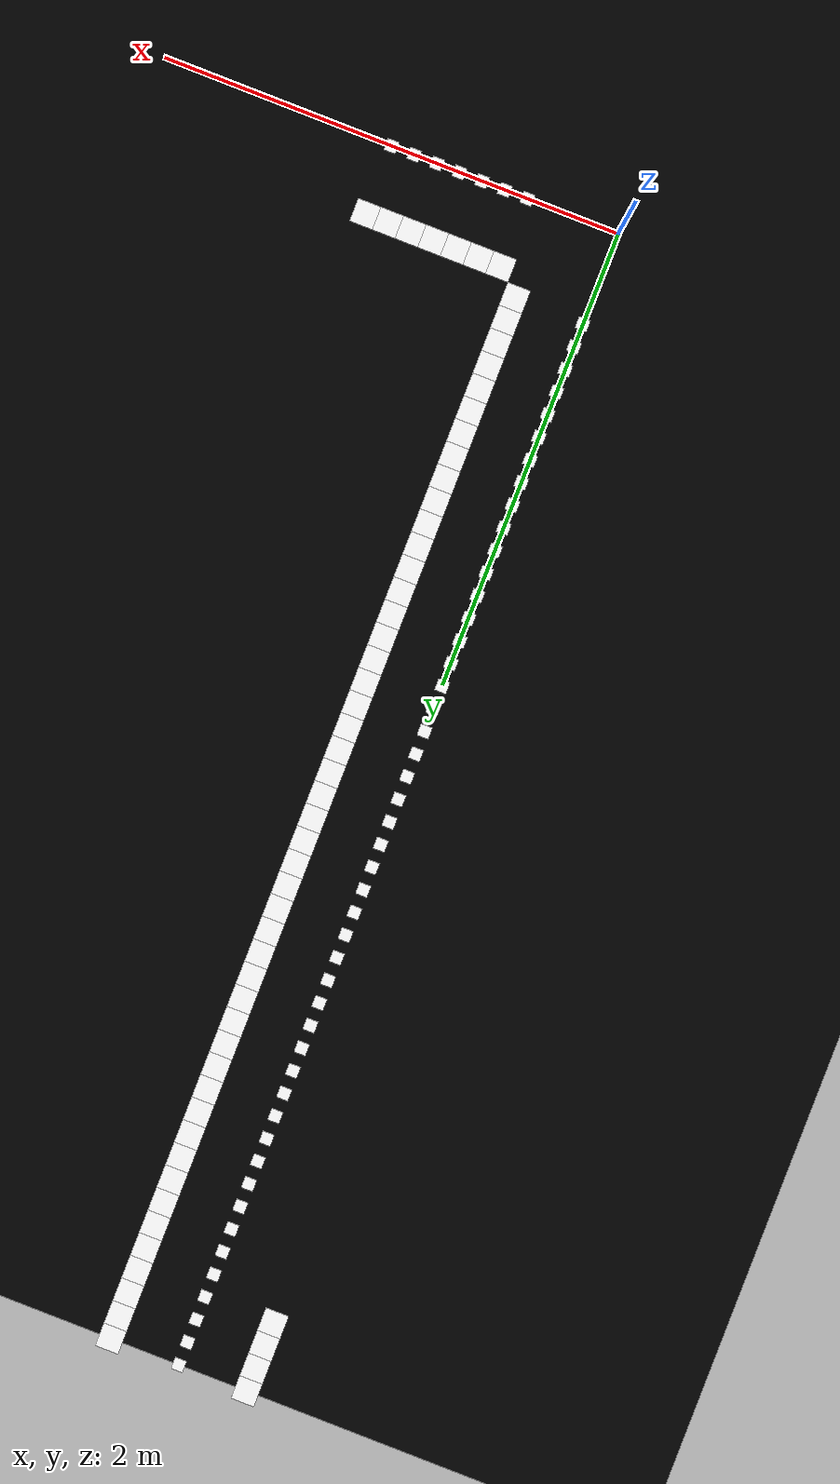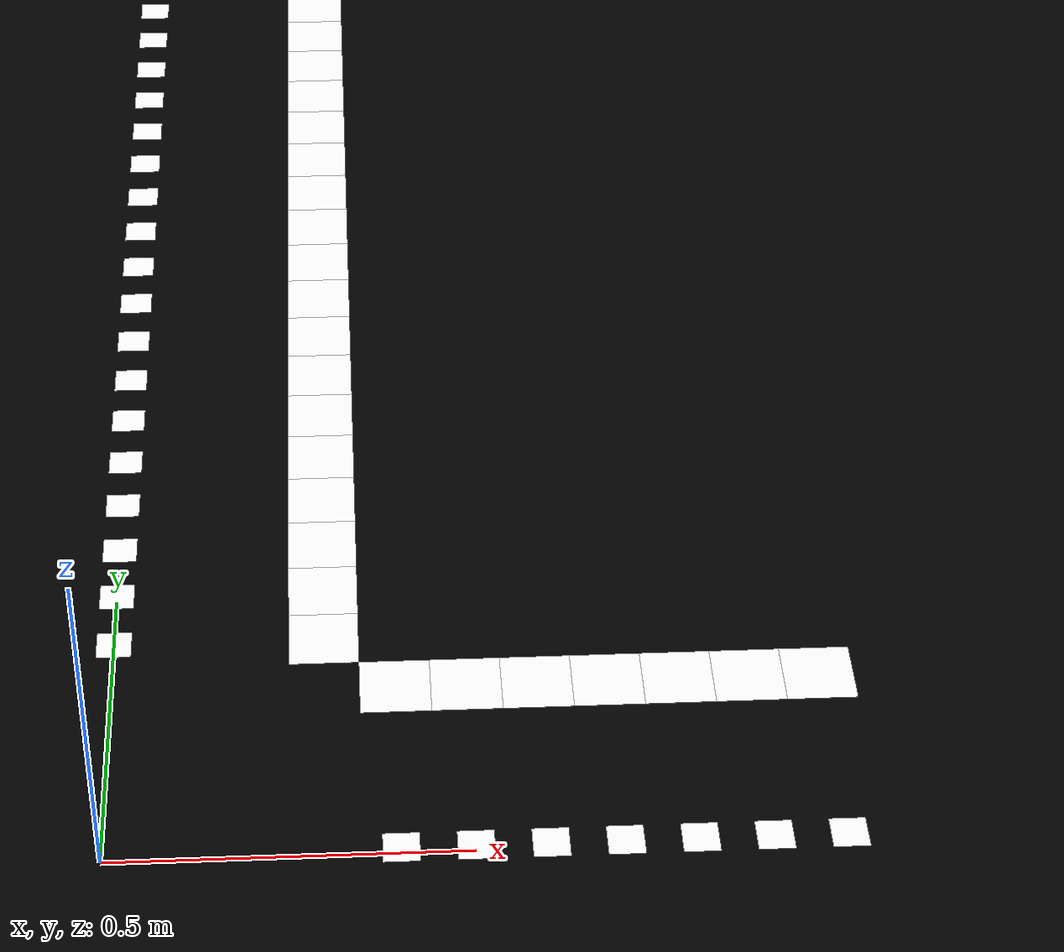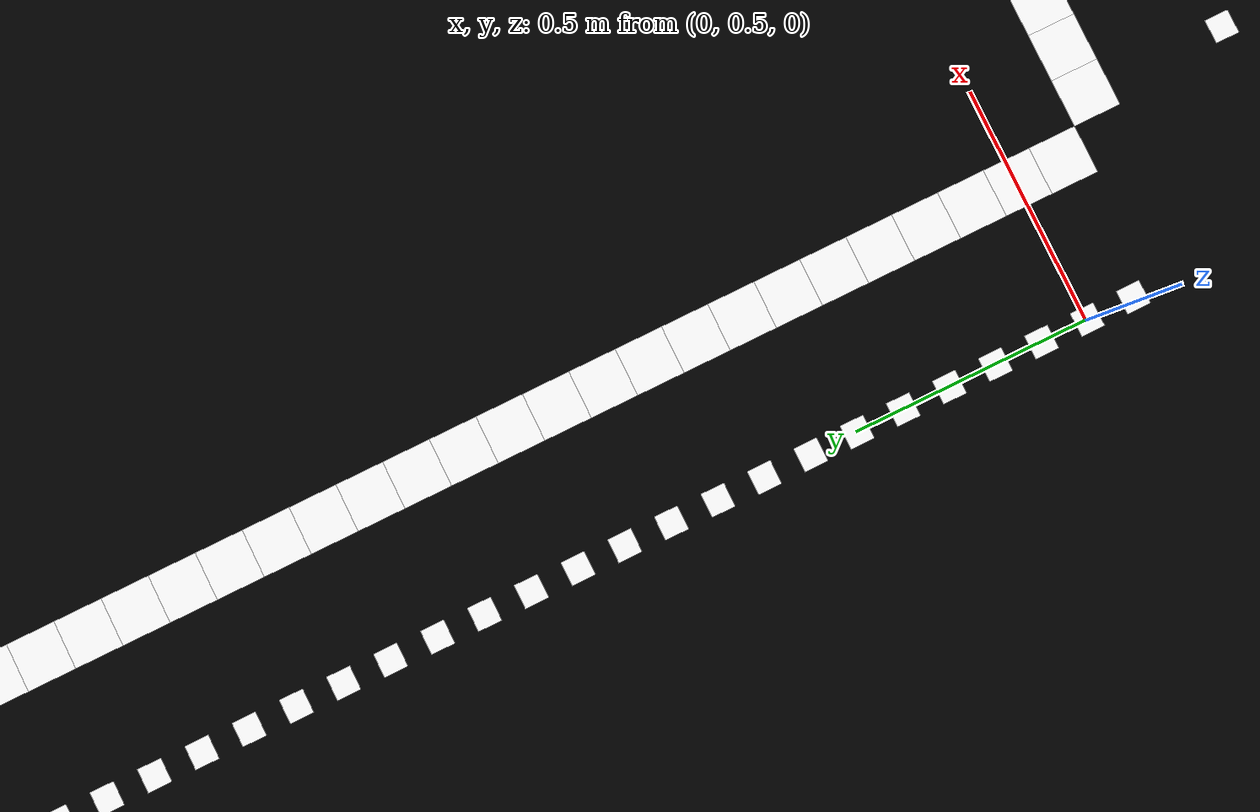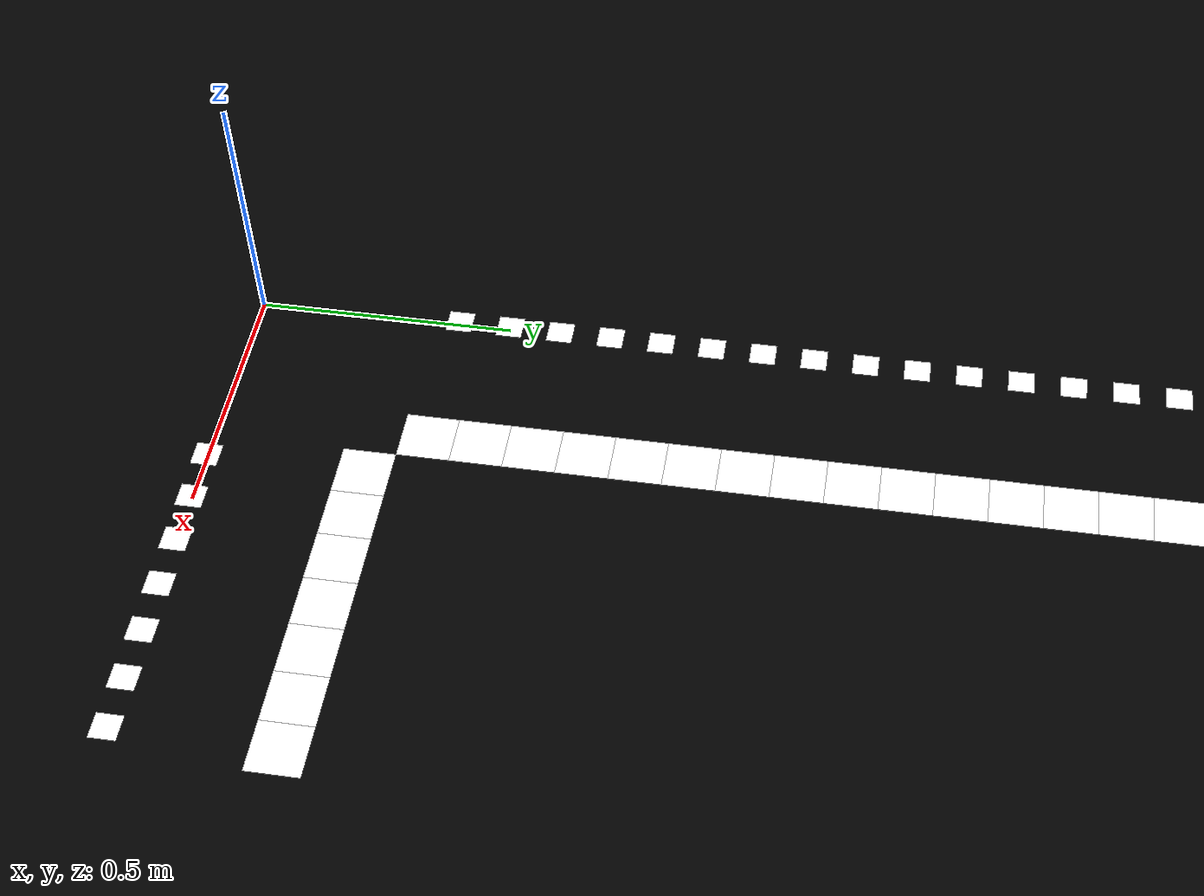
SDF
<sdf version="1.5">
 <model name="AutoNOMOS_mini_intersection">
  <static>true</static>
  <link name="field">
   <pose>0 0 0.01 0 0 0</pose>
   <collision name="collision">
    <geometry><plane><normal>0 0 1</normal><size>10 10</size></plane></geometry>
    <surface><friction><ode><mu>100</mu><mu2>50</mu2></ode></friction></surface>
   </collision>
   <visual name="carpet">
    <cast_shadows>false</cast_shadows>
    <geometry><plane><normal>0 0 1</normal><size>10 10</size></plane></geometry>
    <material>
     <ambient>0 0 0 0</ambient>
     <diffuse>0 0 0 1</diffuse>
     <specular>0 0 0 0</specular>
     <emissive>0 0 0 0</emissive>
    </material>
   </visual>
  </link>
  <link name="L1_p4">
   <pose>0.4 0 .011 0 0 0</pose>
   <visual name="visual_L1_p4">
    <cast_shadows>false</cast_shadows>
    <geometry><plane><normal>0 0 1</normal><size>.05 .05</size></plane></geometry>
    <material>
     <ambient>0 0 0 0</ambient>
     <diffuse>1 1 1 0</diffuse>
     <specular>0 0 0 0</specular>
     <emissive>0 0 0 0</emissive>
    </material>
   </visual>
  </link>
  <link name="L2_p4">
   <pose>0.4 0.3 .011 0 0 0</pose>
   <visual name="visual_L2_p4">
    <cast_shadows>false</cast_shadows>
    <geometry><plane><normal>0 0 1</normal><size>.1 .1</size></plane></geometry>
    <material>
     <ambient>0 0 0 0</ambient>
     <diffuse>1 1 1 0</diffuse>
     <specular>0 0 0 0</specular>
     <emissive>0 0 0 0</emissive>
    </material>
   </visual>
  </link>
  <link name="L3_p4">
   <pose>0.3 0.4 .011 0 0 0</pose>
   <visual name="visual_L3_p4">
    <cast_shadows>false</cast_shadows>
    <geometry><plane><normal>0 0 1</normal><size>.1 .1</size></plane></geometry>
    <material>
     <ambient>0 0 0 0</ambient>
     <diffuse>1 1 1 0</diffuse>
     <specular>0 0 0 0</specular>
     <emissive>0 0 0 0</emissive>
    </material>
   </visual>
  </link>
  <link name="L4_p4">
   <pose>0 0.4 .011 0 0 0</pose>
   <visual name="visual_L4_p4">
    <cast_shadows>false</cast_shadows>
    <geometry><plane><normal>0 0 1</normal><size>.05 .05</size></plane></geometry>
    <material>
     <ambient>0 0 0 0</ambient>
     <diffuse>1 1 1 0</diffuse>
     <specular>0 0 0 0</specular>
     <emissive>0 0 0 0</emissive>
    </material>
   </visual>
  </link>
  <link name="L1_p5">
   <pose>0.5 0 .011 0 0 0</pose>
   <visual name="visual_L1_p5">
    <cast_shadows>false</cast_shadows>
    <geometry><plane><normal>0 0 1</normal><size>.05 .05</size></plane></geometry>
    <material>
     <ambient>0 0 0 0</ambient>
     <diffuse>1 1 1 0</diffuse>
     <specular>0 0 0 0</specular>
     <emissive>0 0 0 0</emissive>
    </material>
   </visual>
  </link>
  <link name="L2_p5">
   <pose>0.5 0.3 .011 0 0 0</pose>
   <visual name="visual_L2_p5">
    <cast_shadows>false</cast_shadows>
    <geometry><plane><normal>0 0 1</normal><size>.1 .1</size></plane></geometry>
    <material>
     <ambient>0 0 0 0</ambient>
     <diffuse>1 1 1 0</diffuse>
     <specular>0 0 0 0</specular>
     <emissive>0 0 0 0</emissive>
    </material>
   </visual>
  </link>
  <link name="L3_p5">
   <pose>0.3 0.5 .011 0 0 0</pose>
   <visual name="visual_L3_p5">
    <cast_shadows>false</cast_shadows>
    <geometry><plane><normal>0 0 1</normal><size>.1 .1</size></plane></geometry>
    <material>
     <ambient>0 0 0 0</ambient>
     <diffuse>1 1 1 0</diffuse>
     <specular>0 0 0 0</specular>
     <emissive>0 0 0 0</emissive>
    </material>
   </visual>
  </link>
  <link name="L4_p5">
   <pose>0 0.5 .011 0 0 0</pose>
   <visual name="visual_L4_p5">
    <cast_shadows>false</cast_shadows>
    <geometry><plane><normal>0 0 1</normal><size>.05 .05</size></plane></geometry>
    <material>
     <ambient>0 0 0 0</ambient>
     <diffuse>1 1 1 0</diffuse>
     <specular>0 0 0 0</specular>
     <emissive>0 0 0 0</emissive>
    </material>
   </visual>
  </link>
  <link name="L1_p6">
   <pose>0.6 0 .011 0 0 0</pose>
   <visual name="visual_L1_p6">
    <cast_shadows>false</cast_shadows>
    <geometry><plane><normal>0 0 1</normal><size>.05 .05</size></plane></geometry>
    <material>
     <ambient>0 0 0 0</ambient>
     <diffuse>1 1 1 0</diffuse>
     <specular>0 0 0 0</specular>
     <emissive>0 0 0 0</emissive>
    </material>
   </visual>
  </link>
  <link name="L2_p6">
   <pose>0.6 0.3 .011 0 0 0</pose>
   <visual name="visual_L2_p6">
    <cast_shadows>false</cast_shadows>
    <geometry><plane><normal>0 0 1</normal><size>.1 .1</size></plane></geometry>
    <material>
     <ambient>0 0 0 0</ambient>
     <diffuse>1 1 1 0</diffuse>
     <specular>0 0 0 0</specular>
     <emissive>0 0 0 0</emissive>
    </material>
   </visual>
  </link>
  <link name="L3_p6">
   <pose>0.3 0.6 .011 0 0 0</pose>
   <visual name="visual_L3_p6">
    <cast_shadows>false</cast_shadows>
    <geometry><plane><normal>0 0 1</normal><size>.1 .1</size></plane></geometry>
    <material>
     <ambient>0 0 0 0</ambient>
     <diffuse>1 1 1 0</diffuse>
     <specular>0 0 0 0</specular>
     <emissive>0 0 0 0</emissive>
    </material>
   </visual>
  </link>
  <link name="L4_p6">
   <pose>0 0.6 .011 0 0 0</pose>
   <visual name="visual_L4_p6">
    <cast_shadows>false</cast_shadows>
    <geometry><plane><normal>0 0 1</normal><size>.05 .05</size></plane></geometry>
    <material>
     <ambient>0 0 0 0</ambient>
     <diffuse>1 1 1 0</diffuse>
     <specular>0 0 0 0</specular>
     <emissive>0 0 0 0</emissive>
    </material>
   </visual>
  </link>
  <link name="L1_p7">
   <pose>0.7 0 .011 0 0 0</pose>
   <visual name="visual_L1_p7">
    <cast_shadows>false</cast_shadows>
    <geometry><plane><normal>0 0 1</normal><size>.05 .05</size></plane></geometry>
    <material>
     <ambient>0 0 0 0</ambient>
     <diffuse>1 1 1 0</diffuse>
     <specular>0 0 0 0</specular>
     <emissive>0 0 0 0</emissive>
    </material>
   </visual>
  </link>
  <link name="L2_p7">
   <pose>0.7 0.3 .011 0 0 0</pose>
   <visual name="visual_L2_p7">
    <cast_shadows>false</cast_shadows>
    <geometry><plane><normal>0 0 1</normal><size>.1 .1</size></plane></geometry>
    <material>
     <ambient>0 0 0 0</ambient>
     <diffuse>1 1 1 0</diffuse>
     <specular>0 0 0 0</specular>
     <emissive>0 0 0 0</emissive>
    </material>
   </visual>
  </link>
  <link name="L3_p7">
   <pose>0.3 0.7 .011 0 0 0</pose>
   <visual name="visual_L3_p7">
    <cast_shadows>false</cast_shadows>
    <geometry><plane><normal>0 0 1</normal><size>.1 .1</size></plane></geometry>
    <material>
     <ambient>0 0 0 0</ambient>
     <diffuse>1 1 1 0</diffuse>
     <specular>0 0 0 0</specular>
     <emissive>0 0 0 0</emissive>
    </material>
   </visual>
  </link>
  <link name="L4_p7">
   <pose>0 0.7 .011 0 0 0</pose>
   <visual name="visual_L4_p7">
    <cast_shadows>false</cast_shadows>
    <geometry><plane><normal>0 0 1</normal><size>.05 .05</size></plane></geometry>
    <material>
     <ambient>0 0 0 0</ambient>
     <diffuse>1 1 1 0</diffuse>
     <specular>0 0 0 0</specular>
     <emissive>0 0 0 0</emissive>
    </material>
   </visual>
  </link>
  <link name="L1_p8">
   <pose>0.8 0 .011 0 0 0</pose>
   <visual name="visual_L1_p8">
    <cast_shadows>false</cast_shadows>
    <geometry><plane><normal>0 0 1</normal><size>.05 .05</size></plane></geometry>
    <material>
     <ambient>0 0 0 0</ambient>
     <diffuse>1 1 1 0</diffuse>
     <specular>0 0 0 0</specular>
     <emissive>0 0 0 0</emissive>
    </material>
   </visual>
  </link>
  <link name="L2_p8">
   <pose>0.8 0.3 .011 0 0 0</pose>
   <visual name="visual_L2_p8">
    <cast_shadows>false</cast_shadows>
    <geometry><plane><normal>0 0 1</normal><size>.1 .1</size></plane></geometry>
    <material>
     <ambient>0 0 0 0</ambient>
     <diffuse>1 1 1 0</diffuse>
     <specular>0 0 0 0</specular>
     <emissive>0 0 0 0</emissive>
    </material>
   </visual>
  </link>
  <link name="L3_p8">
   <pose>0.3 0.8 .011 0 0 0</pose>
   <visual name="visual_L3_p8">
    <cast_shadows>false</cast_shadows>
    <geometry><plane><normal>0 0 1</normal><size>.1 .1</size></plane></geometry>
    <material>
     <ambient>0 0 0 0</ambient>
     <diffuse>1 1 1 0</diffuse>
     <specular>0 0 0 0</specular>
     <emissive>0 0 0 0</emissive>
    </material>
   </visual>
  </link>
  <link name="L4_p8">
   <pose>0 0.8 .011 0 0 0</pose>
   <visual name="visual_L4_p8">
    <cast_shadows>false</cast_shadows>
    <geometry><plane><normal>0 0 1</normal><size>.05 .05</size></plane></geometry>
    <material>
     <ambient>0 0 0 0</ambient>
     <diffuse>1 1 1 0</diffuse>
     <specular>0 0 0 0</specular>
     <emissive>0 0 0 0</emissive>
    </material>
   </visual>
  </link>
  <link name="L1_p9">
   <pose>0.9 0 .011 0 0 0</pose>
   <visual name="visual_L1_p9">
    <cast_shadows>false</cast_shadows>
    <geometry><plane><normal>0 0 1</normal><size>.05 .05</size></plane></geometry>
    <material>
     <ambient>0 0 0 0</ambient>
     <diffuse>1 1 1 0</diffuse>
     <specular>0 0 0 0</specular>
     <emissive>0 0 0 0</emissive>
    </material>
   </visual>
  </link>
  <link name="L2_p9">
   <pose>0.9 0.3 .011 0 0 0</pose>
   <visual name="visual_L2_p9">
    <cast_shadows>false</cast_shadows>
    <geometry><plane><normal>0 0 1</normal><size>.1 .1</size></plane></geometry>
    <material>
     <ambient>0 0 0 0</ambient>
     <diffuse>1 1 1 0</diffuse>
     <specular>0 0 0 0</specular>
     <emissive>0 0 0 0</emissive>
    </material>
   </visual>
  </link>
  <link name="L3_p9">
   <pose>0.3 0.9 .011 0 0 0</pose>
   <visual name="visual_L3_p9">
    <cast_shadows>false</cast_shadows>
    <geometry><plane><normal>0 0 1</normal><size>.1 .1</size></plane></geometry>
    <material>
     <ambient>0 0 0 0</ambient>
     <diffuse>1 1 1 0</diffuse>
     <specular>0 0 0 0</specular>
     <emissive>0 0 0 0</emissive>
    </material>
   </visual>
  </link>
  <link name="L4_p9">
   <pose>0 0.9 .011 0 0 0</pose>
   <visual name="visual_L4_p9">
    <cast_shadows>false</cast_shadows>
    <geometry><plane><normal>0 0 1</normal><size>.05 .05</size></plane></geometry>
    <material>
     <ambient>0 0 0 0</ambient>
     <diffuse>1 1 1 0</diffuse>
     <specular>0 0 0 0</specular>
     <emissive>0 0 0 0</emissive>
    </material>
   </visual>
  </link>
  <link name="L1_p10">
   <pose>1 0 .011 0 0 0</pose>
   <visual name="visual_L1_p10">
    <cast_shadows>false</cast_shadows>
    <geometry><plane><normal>0 0 1</normal><size>.05 .05</size></plane></geometry>
    <material>
     <ambient>0 0 0 0</ambient>
     <diffuse>1 1 1 0</diffuse>
     <specular>0 0 0 0</specular>
     <emissive>0 0 0 0</emissive>
    </material>
   </visual>
  </link>
  <link name="L2_p10">
   <pose>1 0.3 .011 0 0 0</pose>
   <visual name="visual_L2_p10">
    <cast_shadows>false</cast_shadows>
    <geometry><plane><normal>0 0 1</normal><size>.1 .1</size></plane></geometry>
    <material>
     <ambient>0 0 0 0</ambient>
     <diffuse>1 1 1 0</diffuse>
     <specular>0 0 0 0</specular>
     <emissive>0 0 0 0</emissive>
    </material>
   </visual>
  </link>
  <link name="L3_p10">
   <pose>0.3 1 .011 0 0 0</pose>
   <visual name="visual_L3_p10">
    <cast_shadows>false</cast_shadows>
    <geometry><plane><normal>0 0 1</normal><size>.1 .1</size></plane></geometry>
    <material>
     <ambient>0 0 0 0</ambient>
     <diffuse>1 1 1 0</diffuse>
     <specular>0 0 0 0</specular>
     <emissive>0 0 0 0</emissive>
    </material>
   </visual>
  </link>
  <link name="L4_p10">
   <pose>0 1 .011 0 0 0</pose>
   <visual name="visual_L4_p10">
    <cast_shadows>false</cast_shadows>
    <geometry><plane><normal>0 0 1</normal><size>.05 .05</size></plane></geometry>
    <material>
     <ambient>0 0 0 0</ambient>
     <diffuse>1 1 1 0</diffuse>
     <specular>0 0 0 0</specular>
     <emissive>0 0 0 0</emissive>
    </material>
   </visual>
  </link>
  <link name="L3_p11">
   <pose>0.3 1.1 .011 0 0 0</pose>
   <visual name="visual_L3_p11">
    <cast_shadows>false</cast_shadows>
    <geometry><plane><normal>0 0 1</normal><size>.1 .1</size></plane></geometry>
    <material>
     <ambient>0 0 0 0</ambient>
     <diffuse>1 1 1 0</diffuse>
     <specular>0 0 0 0</specular>
     <emissive>0 0 0 0</emissive>
    </material>
   </visual>
  </link>
  <link name="L4_p11">
   <pose>0 1.1 .011 0 0 0</pose>
   <visual name="visual_L4_p11">
    <cast_shadows>false</cast_shadows>
    <geometry><plane><normal>0 0 1</normal><size>.05 .05</size></plane></geometry>
    <material>
     <ambient>0 0 0 0</ambient>
     <diffuse>1 1 1 0</diffuse>
     <specular>0 0 0 0</specular>
     <emissive>0 0 0 0</emissive>
    </material>
   </visual>
  </link>
  <link name="L3_p12">
   <pose>0.3 1.2 .011 0 0 0</pose>
   <visual name="visual_L3_p12">
    <cast_shadows>false</cast_shadows>
    <geometry><plane><normal>0 0 1</normal><size>.1 .1</size></plane></geometry>
    <material>
     <ambient>0 0 0 0</ambient>
     <diffuse>1 1 1 0</diffuse>
     <specular>0 0 0 0</specular>
     <emissive>0 0 0 0</emissive>
    </material>
   </visual>
  </link>
  <link name="L4_p12">
   <pose>0 1.2 .011 0 0 0</pose>
   <visual name="visual_L4_p12">
    <cast_shadows>false</cast_shadows>
    <geometry><plane><normal>0 0 1</normal><size>.05 .05</size></plane></geometry>
    <material>
     <ambient>0 0 0 0</ambient>
     <diffuse>1 1 1 0</diffuse>
     <specular>0 0 0 0</specular>
     <emissive>0 0 0 0</emissive>
    </material>
   </visual>
  </link>
  <link name="L3_p13">
   <pose>0.3 1.3 .011 0 0 0</pose>
   <visual name="visual_L3_p13">
    <cast_shadows>false</cast_shadows>
    <geometry><plane><normal>0 0 1</normal><size>.1 .1</size></plane></geometry>
    <material>
     <ambient>0 0 0 0</ambient>
     <diffuse>1 1 1 0</diffuse>
     <specular>0 0 0 0</specular>
     <emissive>0 0 0 0</emissive>
    </material>
   </visual>
  </link>
  <link name="L4_p13">
   <pose>0 1.3 .011 0 0 0</pose>
   <visual name="visual_L4_p13">
    <cast_shadows>false</cast_shadows>
    <geometry><plane><normal>0 0 1</normal><size>.05 .05</size></plane></geometry>
    <material>
     <ambient>0 0 0 0</ambient>
     <diffuse>1 1 1 0</diffuse>
     <specular>0 0 0 0</specular>
     <emissive>0 0 0 0</emissive>
    </material>
   </visual>
  </link>
  <link name="L3_p14">
   <pose>0.3 1.4 .011 0 0 0</pose>
   <visual name="visual_L3_p14">
    <cast_shadows>false</cast_shadows>
    <geometry><plane><normal>0 0 1</normal><size>.1 .1</size></plane></geometry>
    <material>
     <ambient>0 0 0 0</ambient>
     <diffuse>1 1 1 0</diffuse>
     <specular>0 0 0 0</specular>
     <emissive>0 0 0 0</emissive>
    </material>
   </visual>
  </link>
  <link name="L4_p14">
   <pose>0 1.4 .011 0 0 0</pose>
   <visual name="visual_L4_p14">
    <cast_shadows>false</cast_shadows>
    <geometry><plane><normal>0 0 1</normal><size>.05 .05</size></plane></geometry>
    <material>
     <ambient>0 0 0 0</ambient>
     <diffuse>1 1 1 0</diffuse>
     <specular>0 0 0 0</specular>
     <emissive>0 0 0 0</emissive>
    </material>
   </visual>
  </link>
  <link name="L3_p15">
   <pose>0.3 1.5 .011 0 0 0</pose>
   <visual name="visual_L3_p15">
    <cast_shadows>false</cast_shadows>
    <geometry><plane><normal>0 0 1</normal><size>.1 .1</size></plane></geometry>
    <material>
     <ambient>0 0 0 0</ambient>
     <diffuse>1 1 1 0</diffuse>
     <specular>0 0 0 0</specular>
     <emissive>0 0 0 0</emissive>
    </material>
   </visual>
  </link>
  <link name="L4_p15">
   <pose>0 1.5 .011 0 0 0</pose>
   <visual name="visual_L4_p15">
    <cast_shadows>false</cast_shadows>
    <geometry><plane><normal>0 0 1</normal><size>.05 .05</size></plane></geometry>
    <material>
     <ambient>0 0 0 0</ambient>
     <diffuse>1 1 1 0</diffuse>
     <specular>0 0 0 0</specular>
     <emissive>0 0 0 0</emissive>
    </material>
   </visual>
  </link>
  <link name="L3_p16">
   <pose>0.3 1.6 .011 0 0 0</pose>
   <visual name="visual_L3_p16">
    <cast_shadows>false</cast_shadows>
    <geometry><plane><normal>0 0 1</normal><size>.1 .1</size></plane></geometry>
    <material>
     <ambient>0 0 0 0</ambient>
     <diffuse>1 1 1 0</diffuse>
     <specular>0 0 0 0</specular>
     <emissive>0 0 0 0</emissive>
    </material>
   </visual>
  </link>
  <link name="L4_p16">
   <pose>0 1.6 .011 0 0 0</pose>
   <visual name="visual_L4_p16">
    <cast_shadows>false</cast_shadows>
    <geometry><plane><normal>0 0 1</normal><size>.05 .05</size></plane></geometry>
    <material>
     <ambient>0 0 0 0</ambient>
     <diffuse>1 1 1 0</diffuse>
     <specular>0 0 0 0</specular>
     <emissive>0 0 0 0</emissive>
    </material>
   </visual>
  </link>
  <link name="L3_p17">
   <pose>0.3 1.7 .011 0 0 0</pose>
   <visual name="visual_L3_p17">
    <cast_shadows>false</cast_shadows>
    <geometry><plane><normal>0 0 1</normal><size>.1 .1</size></plane></geometry>
    <material>
     <ambient>0 0 0 0</ambient>
     <diffuse>1 1 1 0</diffuse>
     <specular>0 0 0 0</specular>
     <emissive>0 0 0 0</emissive>
    </material>
   </visual>
  </link>
  <link name="L4_p17">
   <pose>0 1.7 .011 0 0 0</pose>
   <visual name="visual_L4_p17">
    <cast_shadows>false</cast_shadows>
    <geometry><plane><normal>0 0 1</normal><size>.05 .05</size></plane></geometry>
    <material>
     <ambient>0 0 0 0</ambient>
     <diffuse>1 1 1 0</diffuse>
     <specular>0 0 0 0</specular>
     <emissive>0 0 0 0</emissive>
    </material>
   </visual>
  </link>
  <link name="L3_p18">
   <pose>0.3 1.8 .011 0 0 0</pose>
   <visual name="visual_L3_p18">
    <cast_shadows>false</cast_shadows>
    <geometry><plane><normal>0 0 1</normal><size>.1 .1</size></plane></geometry>
    <material>
     <ambient>0 0 0 0</ambient>
     <diffuse>1 1 1 0</diffuse>
     <specular>0 0 0 0</specular>
     <emissive>0 0 0 0</emissive>
    </material>
   </visual>
  </link>
  <link name="L4_p18">
   <pose>0 1.8 .011 0 0 0</pose>
   <visual name="visual_L4_p18">
    <cast_shadows>false</cast_shadows>
    <geometry><plane><normal>0 0 1</normal><size>.05 .05</size></plane></geometry>
    <material>
     <ambient>0 0 0 0</ambient>
     <diffuse>1 1 1 0</diffuse>
     <specular>0 0 0 0</specular>
     <emissive>0 0 0 0</emissive>
    </material>
   </visual>
  </link>
  <link name="L3_p19">
   <pose>0.3 1.9 .011 0 0 0</pose>
   <visual name="visual_L3_p19">
    <cast_shadows>false</cast_shadows>
    <geometry><plane><normal>0 0 1</normal><size>.1 .1</size></plane></geometry>
    <material>
     <ambient>0 0 0 0</ambient>
     <diffuse>1 1 1 0</diffuse>
     <specular>0 0 0 0</specular>
     <emissive>0 0 0 0</emissive>
    </material>
   </visual>
  </link>
  <link name="L4_p19">
   <pose>0 1.9 .011 0 0 0</pose>
   <visual name="visual_L4_p19">
    <cast_shadows>false</cast_shadows>
    <geometry><plane><normal>0 0 1</normal><size>.05 .05</size></plane></geometry>
    <material>
     <ambient>0 0 0 0</ambient>
     <diffuse>1 1 1 0</diffuse>
     <specular>0 0 0 0</specular>
     <emissive>0 0 0 0</emissive>
    </material>
   </visual>
  </link>
  <link name="L3_p20">
   <pose>0.3 2 .011 0 0 0</pose>
   <visual name="visual_L3_p20">
    <cast_shadows>false</cast_shadows>
    <geometry><plane><normal>0 0 1</normal><size>.1 .1</size></plane></geometry>
    <material>
     <ambient>0 0 0 0</ambient>
     <diffuse>1 1 1 0</diffuse>
     <specular>0 0 0 0</specular>
     <emissive>0 0 0 0</emissive>
    </material>
   </visual>
  </link>
  <link name="L4_p20">
   <pose>0 2 .011 0 0 0</pose>
   <visual name="visual_L4_p20">
    <cast_shadows>false</cast_shadows>
    <geometry><plane><normal>0 0 1</normal><size>.05 .05</size></plane></geometry>
    <material>
     <ambient>0 0 0 0</ambient>
     <diffuse>1 1 1 0</diffuse>
     <specular>0 0 0 0</specular>
     <emissive>0 0 0 0</emissive>
    </material>
   </visual>
  </link>
  <link name="L3_p21">
   <pose>0.3 2.1 .011 0 0 0</pose>
   <visual name="visual_L3_p21">
    <cast_shadows>false</cast_shadows>
    <geometry><plane><normal>0 0 1</normal><size>.1 .1</size></plane></geometry>
    <material>
     <ambient>0 0 0 0</ambient>
     <diffuse>1 1 1 0</diffuse>
     <specular>0 0 0 0</specular>
     <emissive>0 0 0 0</emissive>
    </material>
   </visual>
  </link>
  <link name="L4_p21">
   <pose>0 2.1 .011 0 0 0</pose>
   <visual name="visual_L4_p21">
    <cast_shadows>false</cast_shadows>
    <geometry><plane><normal>0 0 1</normal><size>.05 .05</size></plane></geometry>
    <material>
     <ambient>0 0 0 0</ambient>
     <diffuse>1 1 1 0</diffuse>
     <specular>0 0 0 0</specular>
     <emissive>0 0 0 0</emissive>
    </material>
   </visual>
  </link>
  <link name="L3_p22">
   <pose>0.3 2.2 .011 0 0 0</pose>
   <visual name="visual_L3_p22">
    <cast_shadows>false</cast_shadows>
    <geometry><plane><normal>0 0 1</normal><size>.1 .1</size></plane></geometry>
    <material>
     <ambient>0 0 0 0</ambient>
     <diffuse>1 1 1 0</diffuse>
     <specular>0 0 0 0</specular>
     <emissive>0 0 0 0</emissive>
    </material>
   </visual>
  </link>
  <link name="L4_p22">
   <pose>0 2.2 .011 0 0 0</pose>
   <visual name="visual_L4_p22">
    <cast_shadows>false</cast_shadows>
    <geometry><plane><normal>0 0 1</normal><size>.05 .05</size></plane></geometry>
    <material>
     <ambient>0 0 0 0</ambient>
     <diffuse>1 1 1 0</diffuse>
     <specular>0 0 0 0</specular>
     <emissive>0 0 0 0</emissive>
    </material>
   </visual>
  </link>
  <link name="L3_p23">
   <pose>0.3 2.3 .011 0 0 0</pose>
   <visual name="visual_L3_p23">
    <cast_shadows>false</cast_shadows>
    <geometry><plane><normal>0 0 1</normal><size>.1 .1</size></plane></geometry>
    <material>
     <ambient>0 0 0 0</ambient>
     <diffuse>1 1 1 0</diffuse>
     <specular>0 0 0 0</specular>
     <emissive>0 0 0 0</emissive>
    </material>
   </visual>
  </link>
  <link name="L4_p23">
   <pose>0 2.3 .011 0 0 0</pose>
   <visual name="visual_L4_p23">
    <cast_shadows>false</cast_shadows>
    <geometry><plane><normal>0 0 1</normal><size>.05 .05</size></plane></geometry>
    <material>
     <ambient>0 0 0 0</ambient>
     <diffuse>1 1 1 0</diffuse>
     <specular>0 0 0 0</specular>
     <emissive>0 0 0 0</emissive>
    </material>
   </visual>
  </link>
  <link name="L3_p24">
   <pose>0.3 2.4 .011 0 0 0</pose>
   <visual name="visual_L3_p24">
    <cast_shadows>false</cast_shadows>
    <geometry><plane><normal>0 0 1</normal><size>.1 .1</size></plane></geometry>
    <material>
     <ambient>0 0 0 0</ambient>
     <diffuse>1 1 1 0</diffuse>
     <specular>0 0 0 0</specular>
     <emissive>0 0 0 0</emissive>
    </material>
   </visual>
  </link>
  <link name="L4_p24">
   <pose>0 2.4 .011 0 0 0</pose>
   <visual name="visual_L4_p24">
    <cast_shadows>false</cast_shadows>
    <geometry><plane><normal>0 0 1</normal><size>.05 .05</size></plane></geometry>
    <material>
     <ambient>0 0 0 0</ambient>
     <diffuse>1 1 1 0</diffuse>
     <specular>0 0 0 0</specular>
     <emissive>0 0 0 0</emissive>
    </material>
   </visual>
  </link>
  <link name="L3_p25">
   <pose>0.3 2.5 .011 0 0 0</pose>
   <visual name="visual_L3_p25">
    <cast_shadows>false</cast_shadows>
    <geometry><plane><normal>0 0 1</normal><size>.1 .1</size></plane></geometry>
    <material>
     <ambient>0 0 0 0</ambient>
     <diffuse>1 1 1 0</diffuse>
     <specular>0 0 0 0</specular>
     <emissive>0 0 0 0</emissive>
    </material>
   </visual>
  </link>
  <link name="L4_p25">
   <pose>0 2.5 .011 0 0 0</pose>
   <visual name="visual_L4_p25">
    <cast_shadows>false</cast_shadows>
    <geometry><plane><normal>0 0 1</normal><size>.05 .05</size></plane></geometry>
    <material>
     <ambient>0 0 0 0</ambient>
     <diffuse>1 1 1 0</diffuse>
     <specular>0 0 0 0</specular>
     <emissive>0 0 0 0</emissive>
    </material>
   </visual>
  </link>
  <link name="L3_p26">
   <pose>0.3 2.6 .011 0 0 0</pose>
   <visual name="visual_L3_p26">
    <cast_shadows>false</cast_shadows>
    <geometry><plane><normal>0 0 1</normal><size>.1 .1</size></plane></geometry>
    <material>
     <ambient>0 0 0 0</ambient>
     <diffuse>1 1 1 0</diffuse>
     <specular>0 0 0 0</specular>
     <emissive>0 0 0 0</emissive>
    </material>
   </visual>
  </link>
  <link name="L4_p26">
   <pose>0 2.6 .011 0 0 0</pose>
   <visual name="visual_L4_p26">
    <cast_shadows>false</cast_shadows>
    <geometry><plane><normal>0 0 1</normal><size>.05 .05</size></plane></geometry>
    <material>
     <ambient>0 0 0 0</ambient>
     <diffuse>1 1 1 0</diffuse>
     <specular>0 0 0 0</specular>
     <emissive>0 0 0 0</emissive>
    </material>
   </visual>
  </link>
  <link name="L3_p27">
   <pose>0.3 2.7 .011 0 0 0</pose>
   <visual name="visual_L3_p27">
    <cast_shadows>false</cast_shadows>
    <geometry><plane><normal>0 0 1</normal><size>.1 .1</size></plane></geometry>
    <material>
     <ambient>0 0 0 0</ambient>
     <diffuse>1 1 1 0</diffuse>
     <specular>0 0 0 0</specular>
     <emissive>0 0 0 0</emissive>
    </material>
   </visual>
  </link>
  <link name="L4_p27">
   <pose>0 2.7 .011 0 0 0</pose>
   <visual name="visual_L4_p27">
    <cast_shadows>false</cast_shadows>
    <geometry><plane><normal>0 0 1</normal><size>.05 .05</size></plane></geometry>
    <material>
     <ambient>0 0 0 0</ambient>
     <diffuse>1 1 1 0</diffuse>
     <specular>0 0 0 0</specular>
     <emissive>0 0 0 0</emissive>
    </material>
   </visual>
  </link>
  <link name="L3_p28">
   <pose>0.3 2.8 .011 0 0 0</pose>
   <visual name="visual_L3_p28">
    <cast_shadows>false</cast_shadows>
    <geometry><plane><normal>0 0 1</normal><size>.1 .1</size></plane></geometry>
    <material>
     <ambient>0 0 0 0</ambient>
     <diffuse>1 1 1 0</diffuse>
     <specular>0 0 0 0</specular>
     <emissive>0 0 0 0</emissive>
    </material>
   </visual>
  </link>
  <link name="L4_p28">
   <pose>0 2.8 .011 0 0 0</pose>
   <visual name="visual_L4_p28">
    <cast_shadows>false</cast_shadows>
    <geometry><plane><normal>0 0 1</normal><size>.05 .05</size></plane></geometry>
    <material>
     <ambient>0 0 0 0</ambient>
     <diffuse>1 1 1 0</diffuse>
     <specular>0 0 0 0</specular>
     <emissive>0 0 0 0</emissive>
    </material>
   </visual>
  </link>
  <link name="L3_p29">
   <pose>0.3 2.9 .011 0 0 0</pose>
   <visual name="visual_L3_p29">
    <cast_shadows>false</cast_shadows>
    <geometry><plane><normal>0 0 1</normal><size>.1 .1</size></plane></geometry>
    <material>
     <ambient>0 0 0 0</ambient>
     <diffuse>1 1 1 0</diffuse>
     <specular>0 0 0 0</specular>
     <emissive>0 0 0 0</emissive>
    </material>
   </visual>
  </link>
  <link name="L4_p29">
   <pose>0 2.9 .011 0 0 0</pose>
   <visual name="visual_L4_p29">
    <cast_shadows>false</cast_shadows>
    <geometry><plane><normal>0 0 1</normal><size>.05 .05</size></plane></geometry>
    <material>
     <ambient>0 0 0 0</ambient>
     <diffuse>1 1 1 0</diffuse>
     <specular>0 0 0 0</specular>
     <emissive>0 0 0 0</emissive>
    </material>
   </visual>
  </link>
  <link name="L3_p30">
   <pose>0.3 3 .011 0 0 0</pose>
   <visual name="visual_L3_p30">
    <cast_shadows>false</cast_shadows>
    <geometry><plane><normal>0 0 1</normal><size>.1 .1</size></plane></geometry>
    <material>
     <ambient>0 0 0 0</ambient>
     <diffuse>1 1 1 0</diffuse>
     <specular>0 0 0 0</specular>
     <emissive>0 0 0 0</emissive>
    </material>
   </visual>
  </link>
  <link name="L4_p30">
   <pose>0 3 .011 0 0 0</pose>
   <visual name="visual_L4_p30">
    <cast_shadows>false</cast_shadows>
    <geometry><plane><normal>0 0 1</normal><size>.05 .05</size></plane></geometry>
    <material>
     <ambient>0 0 0 0</ambient>
     <diffuse>1 1 1 0</diffuse>
     <specular>0 0 0 0</specular>
     <emissive>0 0 0 0</emissive>
    </material>
   </visual>
  </link>
  <link name="L3_p31">
   <pose>0.3 3.1 .011 0 0 0</pose>
   <visual name="visual_L3_p31">
    <cast_shadows>false</cast_shadows>
    <geometry><plane><normal>0 0 1</normal><size>.1 .1</size></plane></geometry>
    <material>
     <ambient>0 0 0 0</ambient>
     <diffuse>1 1 1 0</diffuse>
     <specular>0 0 0 0</specular>
     <emissive>0 0 0 0</emissive>
    </material>
   </visual>
  </link>
  <link name="L4_p31">
   <pose>0 3.1 .011 0 0 0</pose>
   <visual name="visual_L4_p31">
    <cast_shadows>false</cast_shadows>
    <geometry><plane><normal>0 0 1</normal><size>.05 .05</size></plane></geometry>
    <material>
     <ambient>0 0 0 0</ambient>
     <diffuse>1 1 1 0</diffuse>
     <specular>0 0 0 0</specular>
     <emissive>0 0 0 0</emissive>
    </material>
   </visual>
  </link>
  <link name="L3_p32">
   <pose>0.3 3.2 .011 0 0 0</pose>
   <visual name="visual_L3_p32">
    <cast_shadows>false</cast_shadows>
    <geometry><plane><normal>0 0 1</normal><size>.1 .1</size></plane></geometry>
    <material>
     <ambient>0 0 0 0</ambient>
     <diffuse>1 1 1 0</diffuse>
     <specular>0 0 0 0</specular>
     <emissive>0 0 0 0</emissive>
    </material>
   </visual>
  </link>
  <link name="L4_p32">
   <pose>0 3.2 .011 0 0 0</pose>
   <visual name="visual_L4_p32">
    <cast_shadows>false</cast_shadows>
    <geometry><plane><normal>0 0 1</normal><size>.05 .05</size></plane></geometry>
    <material>
     <ambient>0 0 0 0</ambient>
     <diffuse>1 1 1 0</diffuse>
     <specular>0 0 0 0</specular>
     <emissive>0 0 0 0</emissive>
    </material>
   </visual>
  </link>
  <link name="L3_p33">
   <pose>0.3 3.3 .011 0 0 0</pose>
   <visual name="visual_L3_p33">
    <cast_shadows>false</cast_shadows>
    <geometry><plane><normal>0 0 1</normal><size>.1 .1</size></plane></geometry>
    <material>
     <ambient>0 0 0 0</ambient>
     <diffuse>1 1 1 0</diffuse>
     <specular>0 0 0 0</specular>
     <emissive>0 0 0 0</emissive>
    </material>
   </visual>
  </link>
  <link name="L4_p33">
   <pose>0 3.3 .011 0 0 0</pose>
   <visual name="visual_L4_p33">
    <cast_shadows>false</cast_shadows>
    <geometry><plane><normal>0 0 1</normal><size>.05 .05</size></plane></geometry>
    <material>
     <ambient>0 0 0 0</ambient>
     <diffuse>1 1 1 0</diffuse>
     <specular>0 0 0 0</specular>
     <emissive>0 0 0 0</emissive>
    </material>
   </visual>
  </link>
  <link name="L3_p34">
   <pose>0.3 3.4 .011 0 0 0</pose>
   <visual name="visual_L3_p34">
    <cast_shadows>false</cast_shadows>
    <geometry><plane><normal>0 0 1</normal><size>.1 .1</size></plane></geometry>
    <material>
     <ambient>0 0 0 0</ambient>
     <diffuse>1 1 1 0</diffuse>
     <specular>0 0 0 0</specular>
     <emissive>0 0 0 0</emissive>
    </material>
   </visual>
  </link>
  <link name="L4_p34">
   <pose>0 3.4 .011 0 0 0</pose>
   <visual name="visual_L4_p34">
    <cast_shadows>false</cast_shadows>
    <geometry><plane><normal>0 0 1</normal><size>.05 .05</size></plane></geometry>
    <material>
     <ambient>0 0 0 0</ambient>
     <diffuse>1 1 1 0</diffuse>
     <specular>0 0 0 0</specular>
     <emissive>0 0 0 0</emissive>
    </material>
   </visual>
  </link>
  <link name="L3_p35">
   <pose>0.3 3.5 .011 0 0 0</pose>
   <visual name="visual_L3_p35">
    <cast_shadows>false</cast_shadows>
    <geometry><plane><normal>0 0 1</normal><size>.1 .1</size></plane></geometry>
    <material>
     <ambient>0 0 0 0</ambient>
     <diffuse>1 1 1 0</diffuse>
     <specular>0 0 0 0</specular>
     <emissive>0 0 0 0</emissive>
    </material>
   </visual>
  </link>
  <link name="L4_p35">
   <pose>0 3.5 .011 0 0 0</pose>
   <visual name="visual_L4_p35">
    <cast_shadows>false</cast_shadows>
    <geometry><plane><normal>0 0 1</normal><size>.05 .05</size></plane></geometry>
    <material>
     <ambient>0 0 0 0</ambient>
     <diffuse>1 1 1 0</diffuse>
     <specular>0 0 0 0</specular>
     <emissive>0 0 0 0</emissive>
    </material>
   </visual>
  </link>
  <link name="L3_p36">
   <pose>0.3 3.6 .011 0 0 0</pose>
   <visual name="visual_L3_p36">
    <cast_shadows>false</cast_shadows>
    <geometry><plane><normal>0 0 1</normal><size>.1 .1</size></plane></geometry>
    <material>
     <ambient>0 0 0 0</ambient>
     <diffuse>1 1 1 0</diffuse>
     <specular>0 0 0 0</specular>
     <emissive>0 0 0 0</emissive>
    </material>
   </visual>
  </link>
  <link name="L4_p36">
   <pose>0 3.6 .011 0 0 0</pose>
   <visual name="visual_L4_p36">
    <cast_shadows>false</cast_shadows>
    <geometry><plane><normal>0 0 1</normal><size>.05 .05</size></plane></geometry>
    <material>
     <ambient>0 0 0 0</ambient>
     <diffuse>1 1 1 0</diffuse>
     <specular>0 0 0 0</specular>
     <emissive>0 0 0 0</emissive>
    </material>
   </visual>
  </link>
  <link name="L3_p37">
   <pose>0.3 3.7 .011 0 0 0</pose>
   <visual name="visual_L3_p37">
    <cast_shadows>false</cast_shadows>
    <geometry><plane><normal>0 0 1</normal><size>.1 .1</size></plane></geometry>
    <material>
     <ambient>0 0 0 0</ambient>
     <diffuse>1 1 1 0</diffuse>
     <specular>0 0 0 0</specular>
     <emissive>0 0 0 0</emissive>
    </material>
   </visual>
  </link>
  <link name="L4_p37">
   <pose>0 3.7 .011 0 0 0</pose>
   <visual name="visual_L4_p37">
    <cast_shadows>false</cast_shadows>
    <geometry><plane><normal>0 0 1</normal><size>.05 .05</size></plane></geometry>
    <material>
     <ambient>0 0 0 0</ambient>
     <diffuse>1 1 1 0</diffuse>
     <specular>0 0 0 0</specular>
     <emissive>0 0 0 0</emissive>
    </material>
   </visual>
  </link>
  <link name="L3_p38">
   <pose>0.3 3.8 .011 0 0 0</pose>
   <visual name="visual_L3_p38">
    <cast_shadows>false</cast_shadows>
    <geometry><plane><normal>0 0 1</normal><size>.1 .1</size></plane></geometry>
    <material>
     <ambient>0 0 0 0</ambient>
     <diffuse>1 1 1 0</diffuse>
     <specular>0 0 0 0</specular>
     <emissive>0 0 0 0</emissive>
    </material>
   </visual>
  </link>
  <link name="L4_p38">
   <pose>0 3.8 .011 0 0 0</pose>
   <visual name="visual_L4_p38">
    <cast_shadows>false</cast_shadows>
    <geometry><plane><normal>0 0 1</normal><size>.05 .05</size></plane></geometry>
    <material>
     <ambient>0 0 0 0</ambient>
     <diffuse>1 1 1 0</diffuse>
     <specular>0 0 0 0</specular>
     <emissive>0 0 0 0</emissive>
    </material>
   </visual>
  </link>
  <link name="L3_p39">
   <pose>0.3 3.9 .011 0 0 0</pose>
   <visual name="visual_L3_p39">
    <cast_shadows>false</cast_shadows>
    <geometry><plane><normal>0 0 1</normal><size>.1 .1</size></plane></geometry>
    <material>
     <ambient>0 0 0 0</ambient>
     <diffuse>1 1 1 0</diffuse>
     <specular>0 0 0 0</specular>
     <emissive>0 0 0 0</emissive>
    </material>
   </visual>
  </link>
  <link name="L4_p39">
   <pose>0 3.9 .011 0 0 0</pose>
   <visual name="visual_L4_p39">
    <cast_shadows>false</cast_shadows>
    <geometry><plane><normal>0 0 1</normal><size>.05 .05</size></plane></geometry>
    <material>
     <ambient>0 0 0 0</ambient>
     <diffuse>1 1 1 0</diffuse>
     <specular>0 0 0 0</specular>
     <emissive>0 0 0 0</emissive>
    </material>
   </visual>
  </link>
  <link name="L3_p40">
   <pose>0.3 4 .011 0 0 0</pose>
   <visual name="visual_L3_p40">
    <cast_shadows>false</cast_shadows>
    <geometry><plane><normal>0 0 1</normal><size>.1 .1</size></plane></geometry>
    <material>
     <ambient>0 0 0 0</ambient>
     <diffuse>1 1 1 0</diffuse>
     <specular>0 0 0 0</specular>
     <emissive>0 0 0 0</emissive>
    </material>
   </visual>
  </link>
  <link name="L4_p40">
   <pose>0 4 .011 0 0 0</pose>
   <visual name="visual_L4_p40">
    <cast_shadows>false</cast_shadows>
    <geometry><plane><normal>0 0 1</normal><size>.05 .05</size></plane></geometry>
    <material>
     <ambient>0 0 0 0</ambient>
     <diffuse>1 1 1 0</diffuse>
     <specular>0 0 0 0</specular>
     <emissive>0 0 0 0</emissive>
    </material>
   </visual>
  </link>
  <link name="L3_p41">
   <pose>0.3 4.1 .011 0 0 0</pose>
   <visual name="visual_L3_p41">
    <cast_shadows>false</cast_shadows>
    <geometry><plane><normal>0 0 1</normal><size>.1 .1</size></plane></geometry>
    <material>
     <ambient>0 0 0 0</ambient>
     <diffuse>1 1 1 0</diffuse>
     <specular>0 0 0 0</specular>
     <emissive>0 0 0 0</emissive>
    </material>
   </visual>
  </link>
  <link name="L4_p41">
   <pose>0 4.1 .011 0 0 0</pose>
   <visual name="visual_L4_p41">
    <cast_shadows>false</cast_shadows>
    <geometry><plane><normal>0 0 1</normal><size>.05 .05</size></plane></geometry>
    <material>
     <ambient>0 0 0 0</ambient>
     <diffuse>1 1 1 0</diffuse>
     <specular>0 0 0 0</specular>
     <emissive>0 0 0 0</emissive>
    </material>
   </visual>
  </link>
  <link name="L3_p42">
   <pose>0.3 4.2 .011 0 0 0</pose>
   <visual name="visual_L3_p42">
    <cast_shadows>false</cast_shadows>
    <geometry><plane><normal>0 0 1</normal><size>.1 .1</size></plane></geometry>
    <material>
     <ambient>0 0 0 0</ambient>
     <diffuse>1 1 1 0</diffuse>
     <specular>0 0 0 0</specular>
     <emissive>0 0 0 0</emissive>
    </material>
   </visual>
  </link>
  <link name="L4_p42">
   <pose>0 4.2 .011 0 0 0</pose>
   <visual name="visual_L4_p42">
    <cast_shadows>false</cast_shadows>
    <geometry><plane><normal>0 0 1</normal><size>.05 .05</size></plane></geometry>
    <material>
     <ambient>0 0 0 0</ambient>
     <diffuse>1 1 1 0</diffuse>
     <specular>0 0 0 0</specular>
     <emissive>0 0 0 0</emissive>
    </material>
   </visual>
  </link>
  <link name="L3_p43">
   <pose>0.3 4.3 .011 0 0 0</pose>
   <visual name="visual_L3_p43">
    <cast_shadows>false</cast_shadows>
    <geometry><plane><normal>0 0 1</normal><size>.1 .1</size></plane></geometry>
    <material>
     <ambient>0 0 0 0</ambient>
     <diffuse>1 1 1 0</diffuse>
     <specular>0 0 0 0</specular>
     <emissive>0 0 0 0</emissive>
    </material>
   </visual>
  </link>
  <link name="L4_p43">
   <pose>0 4.3 .011 0 0 0</pose>
   <visual name="visual_L4_p43">
    <cast_shadows>false</cast_shadows>
    <geometry><plane><normal>0 0 1</normal><size>.05 .05</size></plane></geometry>
    <material>
     <ambient>0 0 0 0</ambient>
     <diffuse>1 1 1 0</diffuse>
     <specular>0 0 0 0</specular>
     <emissive>0 0 0 0</emissive>
    </material>
   </visual>
  </link>
  <link name="L3_p44">
   <pose>0.3 4.4 .011 0 0 0</pose>
   <visual name="visual_L3_p44">
    <cast_shadows>false</cast_shadows>
    <geometry><plane><normal>0 0 1</normal><size>.1 .1</size></plane></geometry>
    <material>
     <ambient>0 0 0 0</ambient>
     <diffuse>1 1 1 0</diffuse>
     <specular>0 0 0 0</specular>
     <emissive>0 0 0 0</emissive>
    </material>
   </visual>
  </link>
  <link name="L4_p44">
   <pose>0 4.4 .011 0 0 0</pose>
   <visual name="visual_L4_p44">
    <cast_shadows>false</cast_shadows>
    <geometry><plane><normal>0 0 1</normal><size>.05 .05</size></plane></geometry>
    <material>
     <ambient>0 0 0 0</ambient>
     <diffuse>1 1 1 0</diffuse>
     <specular>0 0 0 0</specular>
     <emissive>0 0 0 0</emissive>
    </material>
   </visual>
  </link>
  <link name="L3_p45">
   <pose>0.3 4.5 .011 0 0 0</pose>
   <visual name="visual_L3_p45">
    <cast_shadows>false</cast_shadows>
    <geometry><plane><normal>0 0 1</normal><size>.1 .1</size></plane></geometry>
    <material>
     <ambient>0 0 0 0</ambient>
     <diffuse>1 1 1 0</diffuse>
     <specular>0 0 0 0</specular>
     <emissive>0 0 0 0</emissive>
    </material>
   </visual>
  </link>
  <link name="L4_p45">
   <pose>0 4.5 .011 0 0 0</pose>
   <visual name="visual_L4_p45">
    <cast_shadows>false</cast_shadows>
    <geometry><plane><normal>0 0 1</normal><size>.05 .05</size></plane></geometry>
    <material>
     <ambient>0 0 0 0</ambient>
     <diffuse>1 1 1 0</diffuse>
     <specular>0 0 0 0</specular>
     <emissive>0 0 0 0</emissive>
    </material>
   </visual>
  </link>
  <link name="L3_p46">
   <pose>0.3 4.6 .011 0 0 0</pose>
   <visual name="visual_L3_p46">
    <cast_shadows>false</cast_shadows>
    <geometry><plane><normal>0 0 1</normal><size>.1 .1</size></plane></geometry>
    <material>
     <ambient>0 0 0 0</ambient>
     <diffuse>1 1 1 0</diffuse>
     <specular>0 0 0 0</specular>
     <emissive>0 0 0 0</emissive>
    </material>
   </visual>
  </link>
  <link name="L4_p46">
   <pose>0 4.6 .011 0 0 0</pose>
   <visual name="visual_L4_p46">
    <cast_shadows>false</cast_shadows>
    <geometry><plane><normal>0 0 1</normal><size>.05 .05</size></plane></geometry>
    <material>
     <ambient>0 0 0 0</ambient>
     <diffuse>1 1 1 0</diffuse>
     <specular>0 0 0 0</specular>
     <emissive>0 0 0 0</emissive>
    </material>
   </visual>
  </link>
  <link name="L3_p47">
   <pose>0.3 4.7 .011 0 0 0</pose>
   <visual name="visual_L3_p47">
    <cast_shadows>false</cast_shadows>
    <geometry><plane><normal>0 0 1</normal><size>.1 .1</size></plane></geometry>
    <material>
     <ambient>0 0 0 0</ambient>
     <diffuse>1 1 1 0</diffuse>
     <specular>0 0 0 0</specular>
     <emissive>0 0 0 0</emissive>
    </material>
   </visual>
  </link>
  <link name="L4_p47">
   <pose>0 4.7 .011 0 0 0</pose>
   <visual name="visual_L4_p47">
    <cast_shadows>false</cast_shadows>
    <geometry><plane><normal>0 0 1</normal><size>.05 .05</size></plane></geometry>
    <material>
     <ambient>0 0 0 0</ambient>
     <diffuse>1 1 1 0</diffuse>
     <specular>0 0 0 0</specular>
     <emissive>0 0 0 0</emissive>
    </material>
   </visual>
  </link>
  <link name="L5_p47">
   <pose>-0.3 4.7 .011 0 0 0</pose>
   <visual name="visual_L5_p47">
    <cast_shadows>false</cast_shadows>
    <geometry><plane><normal>0 0 1</normal><size>.1 .1</size></plane></geometry>
    <material>
     <ambient>0 0 0 0</ambient>
     <diffuse>1 1 1 0</diffuse>
     <specular>0 0 0 0</specular>
     <emissive>0 0 0 0</emissive>
    </material>
   </visual>
  </link>
  <link name="L3_p48">
   <pose>0.3 4.8 .011 0 0 0</pose>
   <visual name="visual_L3_p48">
    <cast_shadows>false</cast_shadows>
    <geometry><plane><normal>0 0 1</normal><size>.1 .1</size></plane></geometry>
    <material>
     <ambient>0 0 0 0</ambient>
     <diffuse>1 1 1 0</diffuse>
     <specular>0 0 0 0</specular>
     <emissive>0 0 0 0</emissive>
    </material>
   </visual>
  </link>
  <link name="L4_p48">
   <pose>0 4.8 .011 0 0 0</pose>
   <visual name="visual_L4_p48">
    <cast_shadows>false</cast_shadows>
    <geometry><plane><normal>0 0 1</normal><size>.05 .05</size></plane></geometry>
    <material>
     <ambient>0 0 0 0</ambient>
     <diffuse>1 1 1 0</diffuse>
     <specular>0 0 0 0</specular>
     <emissive>0 0 0 0</emissive>
    </material>
   </visual>
  </link>
  <link name="L5_p48">
   <pose>-0.3 4.8 .011 0 0 0</pose>
   <visual name="visual_L5_p48">
    <cast_shadows>false</cast_shadows>
    <geometry><plane><normal>0 0 1</normal><size>.1 .1</size></plane></geometry>
    <material>
     <ambient>0 0 0 0</ambient>
     <diffuse>1 1 1 0</diffuse>
     <specular>0 0 0 0</specular>
     <emissive>0 0 0 0</emissive>
    </material>
   </visual>
  </link>
  <link name="L3_p49">
   <pose>0.3 4.9 .011 0 0 0</pose>
   <visual name="visual_L3_p49">
    <cast_shadows>false</cast_shadows>
    <geometry><plane><normal>0 0 1</normal><size>.1 .1</size></plane></geometry>
    <material>
     <ambient>0 0 0 0</ambient>
     <diffuse>1 1 1 0</diffuse>
     <specular>0 0 0 0</specular>
     <emissive>0 0 0 0</emissive>
    </material>
   </visual>
  </link>
  <link name="L4_p49">
   <pose>0 4.9 .011 0 0 0</pose>
   <visual name="visual_L4_p49">
    <cast_shadows>false</cast_shadows>
    <geometry><plane><normal>0 0 1</normal><size>.05 .05</size></plane></geometry>
    <material>
     <ambient>0 0 0 0</ambient>
     <diffuse>1 1 1 0</diffuse>
     <specular>0 0 0 0</specular>
     <emissive>0 0 0 0</emissive>
    </material>
   </visual>
  </link>
  <link name="L5_p49">
   <pose>-0.3 4.9 .011 0 0 0</pose>
   <visual name="visual_L5_p49">
    <cast_shadows>false</cast_shadows>
    <geometry><plane><normal>0 0 1</normal><size>.1 .1</size></plane></geometry>
    <material>
     <ambient>0 0 0 0</ambient>
     <diffuse>1 1 1 0</diffuse>
     <specular>0 0 0 0</specular>
     <emissive>0 0 0 0</emissive>
    </material>
   </visual>
  </link>
  <link name="L3_p50">
   <pose>0.3 5 .011 0 0 0</pose>
   <visual name="visual_L3_p50">
    <cast_shadows>false</cast_shadows>
    <geometry><plane><normal>0 0 1</normal><size>.1 .1</size></plane></geometry>
    <material>
     <ambient>0 0 0 0</ambient>
     <diffuse>1 1 1 0</diffuse>
     <specular>0 0 0 0</specular>
     <emissive>0 0 0 0</emissive>
    </material>
   </visual>
  </link>
  <link name="L4_p50">
   <pose>0 5 .011 0 0 0</pose>
   <visual name="visual_L4_p50">
    <cast_shadows>false</cast_shadows>
    <geometry><plane><normal>0 0 1</normal><size>.05 .05</size></plane></geometry>
    <material>
     <ambient>0 0 0 0</ambient>
     <diffuse>1 1 1 0</diffuse>
     <specular>0 0 0 0</specular>
     <emissive>0 0 0 0</emissive>
    </material>
   </visual>
  </link>
  <link name="L5_p50">
   <pose>-0.3 5 .011 0 0 0</pose>
   <visual name="visual_L5_p50">
    <cast_shadows>false</cast_shadows>
    <geometry><plane><normal>0 0 1</normal><size>.1 .1</size></plane></geometry>
    <material>
     <ambient>0 0 0 0</ambient>
     <diffuse>1 1 1 0</diffuse>
     <specular>0 0 0 0</specular>
     <emissive>0 0 0 0</emissive>
    </material>
   </visual>
  </link>
 </model>
</sdf>
